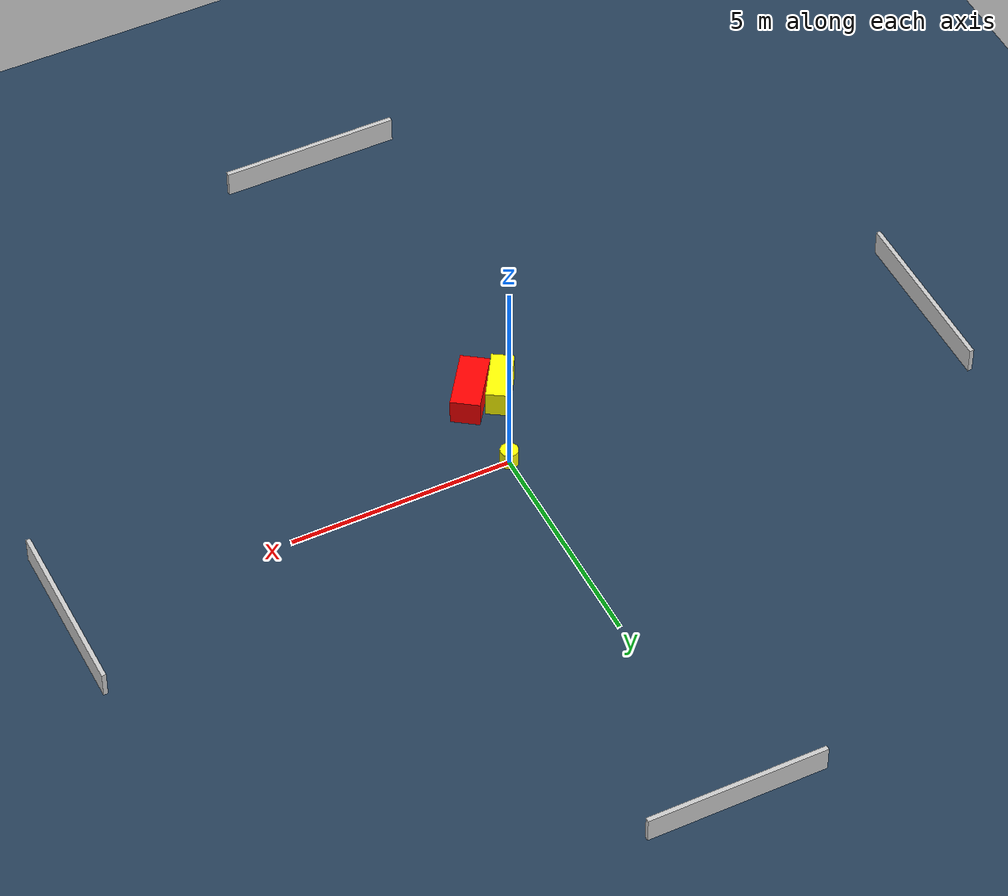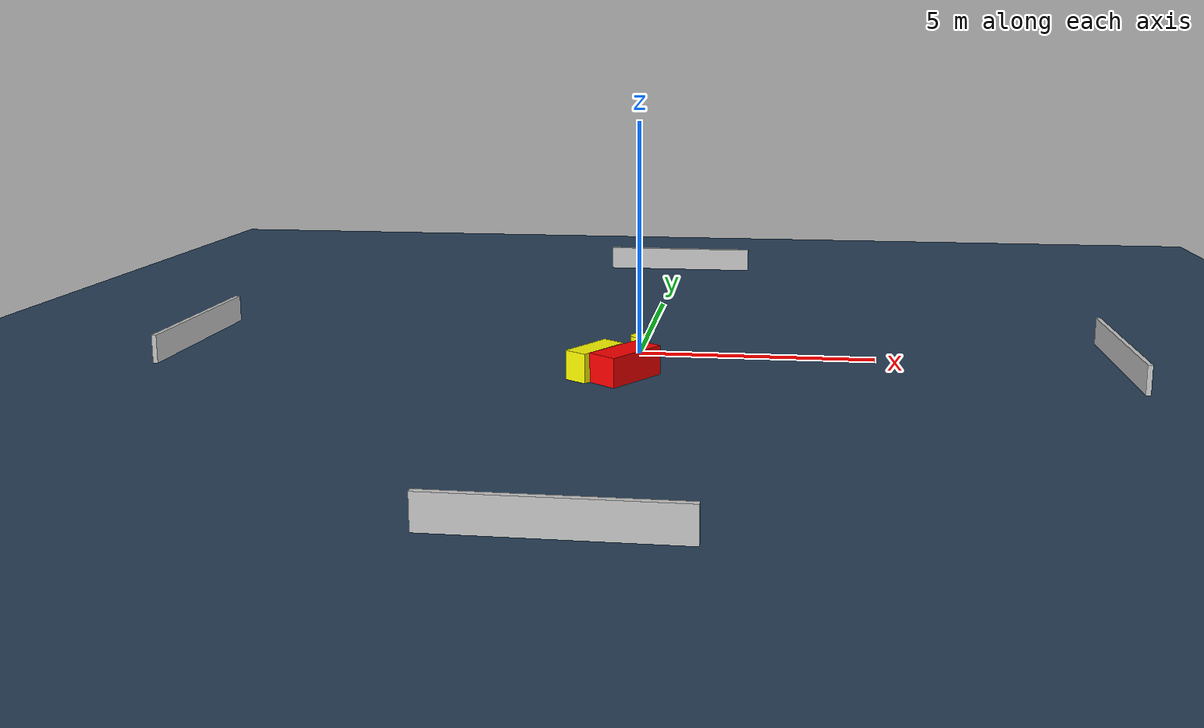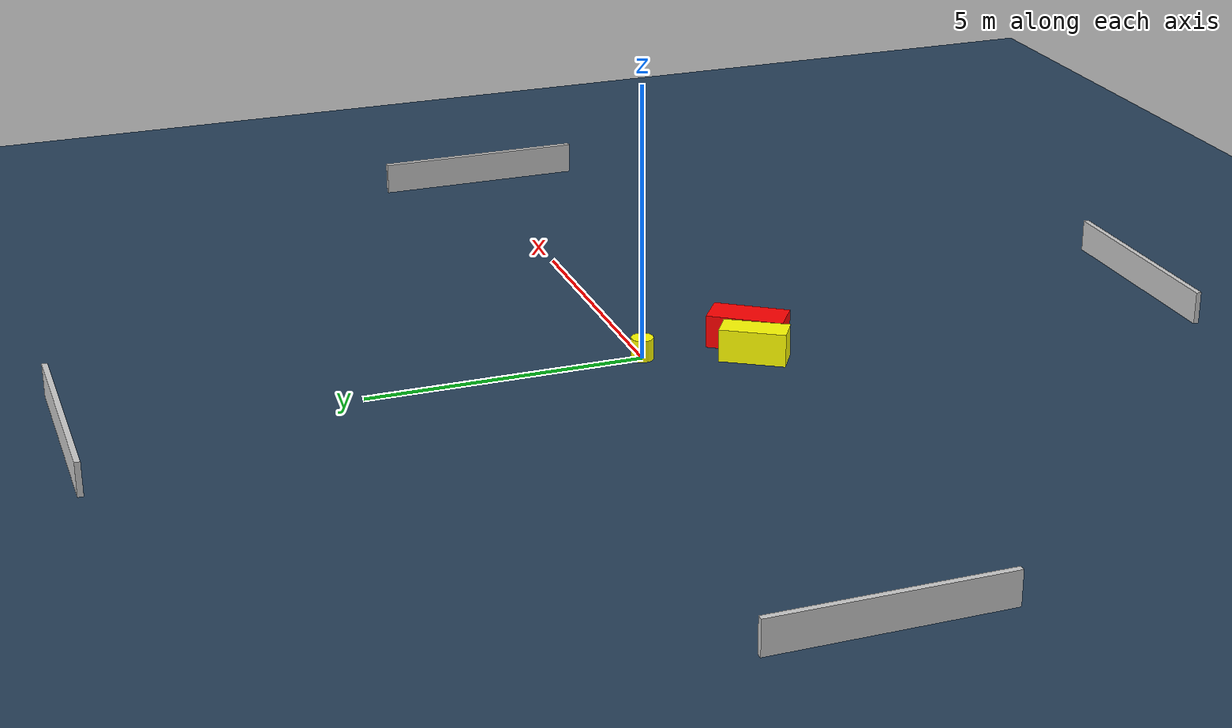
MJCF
<?xml version="1.0" ?>
<mujoco model="generated_environment">
  <option timestep="0.01" integrator="RK4" cone="elliptic"/>
  <default>
    <geom density="1"/>
  </default>
  <asset>
    <texture builtin="gradient" height="3072" name="skybox" rgb1="0.3 0.5 0.7" rgb2="0 0 0" type="skybox" width="512"/>
    <texture builtin="checker" height="300" name="groundplane" rgb1="0.2 0.3 0.4" rgb2="0.1 0.2 0.3" type="2d" width="300"/>
    <material name="groundplane" reflectance="0.2" texrepeat="5 5" texture="groundplane"/>
  </asset>
  <worldbody>
    <light dir="0 0 -1" directional="true" pos="0 0 1.5"/>
    <geom condim="3" friction="0.5 0.005 0.001" material="groundplane" name="floor" pos="0 0 0" size="0 0 0.05" type="plane"/>
    <body name="walls">
      <geom name="wall_1" condim="4" pos="-10.0 0.0 0.3" rgba="0.800000011920929 0.800000011920929 0.800000011920929 1.0" size="0.05 2.0 0.3" type="box"/>
      <geom name="wall_2" condim="4" pos="10.0 0.0 0.3" rgba="0.800000011920929 0.800000011920929 0.800000011920929 1.0" size="0.05 2.0 0.3" type="box"/>
      <geom name="wall_3" condim="4" pos="0.0 -10.0 0.3" rgba="0.800000011920929 0.800000011920929 0.800000011920929 1.0" size="2.0 0.05 0.3" type="box"/>
      <geom name="wall_4" condim="4" pos="0.0 10.0 0.3" rgba="0.800000011920929 0.800000011920929 0.800000011920929 1.0" size="2.0 0.05 0.3" type="box"/>
    </body>
    <body name="robot">
      <joint name="joint_x" type="slide" pos="0 0 0" axis="1 0 0"/>
      <joint name="joint_y" type="slide" pos="0 0 0" axis="0 1 0"/>
      <geom name="robot" type="cylinder" pos="0.0 0.0 0.2" size="0.2 0.2 0.0" mass="5.0" friction="1.0 0.005 0.0001" condim="4" rgba="1.0 1.0 0.0 1.0"/>
    </body>
    <body name="obstacle_1_movable">
      <geom name="obstacle_1_movable" condim="4" pos="-0.695087522916521 -1.8371085602081478 0.3" euler="0 0 57.700763985526706" friction="0.0 0.005 0.001" rgba="1.0 1.0 0.0 1.0" size="0.594389408538766 0.2521118804994567 0.3" type="box" mass="0.1"/>
      <joint type="free"/>
    </body>
    <body name="obstacle_2_static">
      <geom name="obstacle_2_static" condim="4" pos="-0.05769835706104299 -1.9799262608665913 0.3" euler="0 0 144.8805536092702" friction="0.0 0.005 0.001" rgba="1.0 0.0 0.0 1.0" size="0.3242797538478395 0.6900075057104498 0.3" type="box"/>
    </body>
  </worldbody>
  <actuator>
    <motor name="actuator_x" joint="joint_x" gear="1" ctrlrange="-1 1"/>
    <motor name="actuator_y" joint="joint_y" gear="1" ctrlrange="-1 1"/>
  </actuator>
</mujoco>
